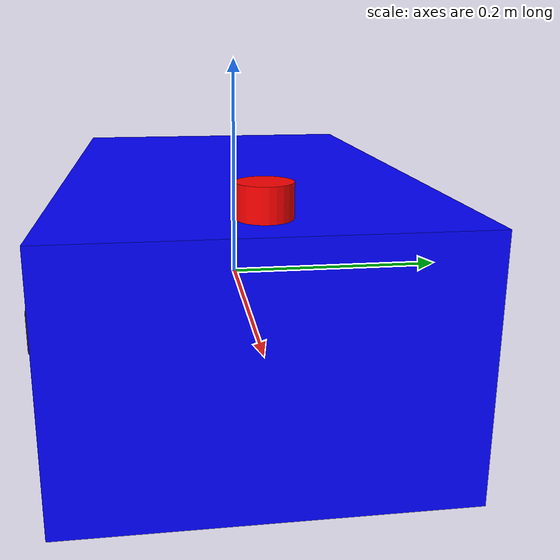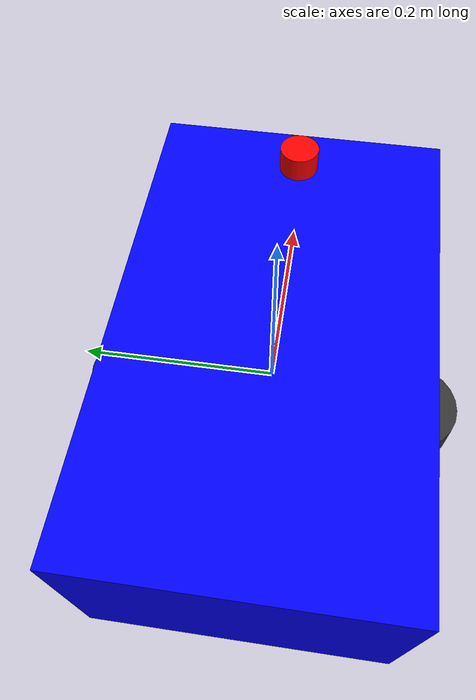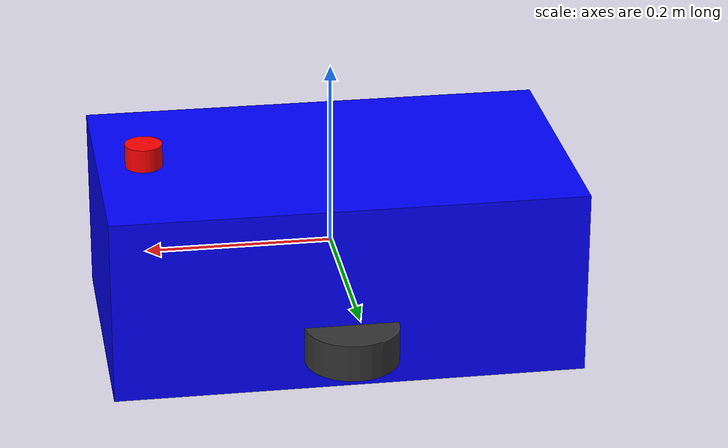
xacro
<?xml version="1.0"?>
<robot xmlns:xacro="http://www.ros.org/wiki/xacro" name="my_robot">

    <!-- 基础连杆 -->
    <link name="base_link">
        <visual>
            <geometry>
                <box size="0.5 0.3 0.2"/>
            </geometry>
            <material name="blue">
                <color rgba="0 0 1 1"/>
            </material>
        </visual>
        <collision>
            <geometry>
                <box size="0.5 0.3 0.2"/>
            </geometry>
        </collision>
        <inertial>
            <mass value="1.0"/>
            <inertia ixx="0.1" ixy="0.0" ixz="0.0" iyy="0.1" iyz="0.0" izz="0.1"/>
        </inertial>
    </link>

    <!-- 左轮 -->
    <link name="left_wheel">
        <visual>
            <geometry>
                <cylinder radius="0.05" length="0.04"/>
            </geometry>
            <material name="black">
                <color rgba="0.2 0.2 0.2 1"/>
            </material>
        </visual>
        <collision>
            <geometry>
                <cylinder radius="0.05" length="0.04"/>
            </geometry>
        </collision>
        <inertial>
            <mass value="0.1"/>
            <inertia ixx="0.0001" ixy="0.0" ixz="0.0" iyy="0.0001" iyz="0.0" izz="0.0001"/>
        </inertial>
    </link>

    <!-- 右轮 -->
    <link name="right_wheel">
        <visual>
            <geometry>
                <cylinder radius="0.05" length="0.04"/>
            </geometry>
            <material name="black">
                <color rgba="0.2 0.2 0.2 1"/>
            </material>
        </visual>
        <collision>
            <geometry>
                <cylinder radius="0.05" length="0.04"/>
            </geometry>
        </collision>
        <inertial>
            <mass value="0.1"/>
            <inertia ixx="0.0001" ixy="0.0" ixz="0.0" iyy="0.0001" iyz="0.0" izz="0.0001"/>
        </inertial>
    </link>

    <!-- 左轮关节 -->
    <joint name="left_wheel_joint" type="continuous">
        <parent link="base_link"/>
        <child link="left_wheel"/>
        <origin xyz="0 0.15 -0.05" rpy="0 0 0"/>
        <axis xyz="0 1 0"/>
    </joint>

    <!-- 右轮关节 -->
    <joint name="right_wheel_joint" type="continuous">
        <parent link="base_link"/>
        <child link="right_wheel"/>
        <origin xyz="0 -0.15 -0.05" rpy="0 0 0"/>
        <axis xyz="0 1 0"/>
    </joint>

    <!-- 激光雷达 -->
    <link name="laser_link">
        <visual>
            <geometry>
                <cylinder radius="0.02" length="0.05"/>
            </geometry>
            <material name="red">
                <color rgba="1 0 0 1"/>
            </material>
        </visual>
        <collision>
            <geometry>
                <cylinder radius="0.02" length="0.05"/>
            </geometry>
        </collision>
        <inertial>
            <mass value="0.01"/>
            <inertia ixx="0.00001" ixy="0.0" ixz="0.0" iyy="0.00001" iyz="0.0" izz="0.00001"/>
        </inertial>
    </link>

    <joint name="laser_joint" type="fixed">
        <parent link="base_link"/>
        <child link="laser_link"/>
        <origin xyz="0.2 0 0.1" rpy="0 0 0"/>
    </joint>

    <!-- Gazebo Sim 差分驱动插件 (Harmonic) -->
    <gazebo>
        <plugin filename="gz-sim-diff-drive-system" name="gz::sim::systems::DiffDrive">
            <left_joint>left_wheel_joint</left_joint>
            <right_joint>right_wheel_joint</right_joint>
            <wheel_separation>0.3</wheel_separation>
            <wheel_diameter>0.1</wheel_diameter>
            <topic>/cmd_vel</topic>
        </plugin>
    </gazebo>

    <!-- Gazebo Sim 激光雷达 (GPU Lidar) -->
    <gazebo reference="laser_link">
        <sensor type="gpu_lidar" name="laser_sensor">
            <pose>0 0 0 0 0 0</pose>
            <topic>scan</topic>
            <update_rate>10</update_rate>
            <ray>
                <scan>
                    <horizontal>
                        <samples>360</samples>
                        <resolution>1</resolution>
                        <min_angle>-1.57</min_angle>
                        <max_angle>1.57</max_angle>
                    </horizontal>
                </scan>
                <range>
                    <min>0.1</min>
                    <max>10.0</max>
                </range>
            </ray>
        </sensor>
    </gazebo>

</robot>
